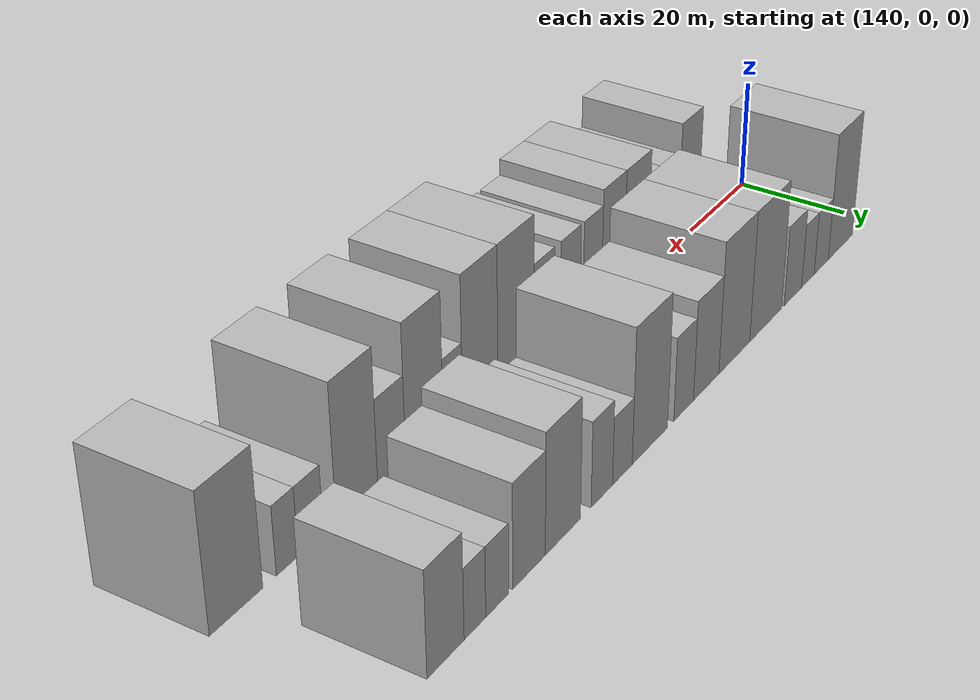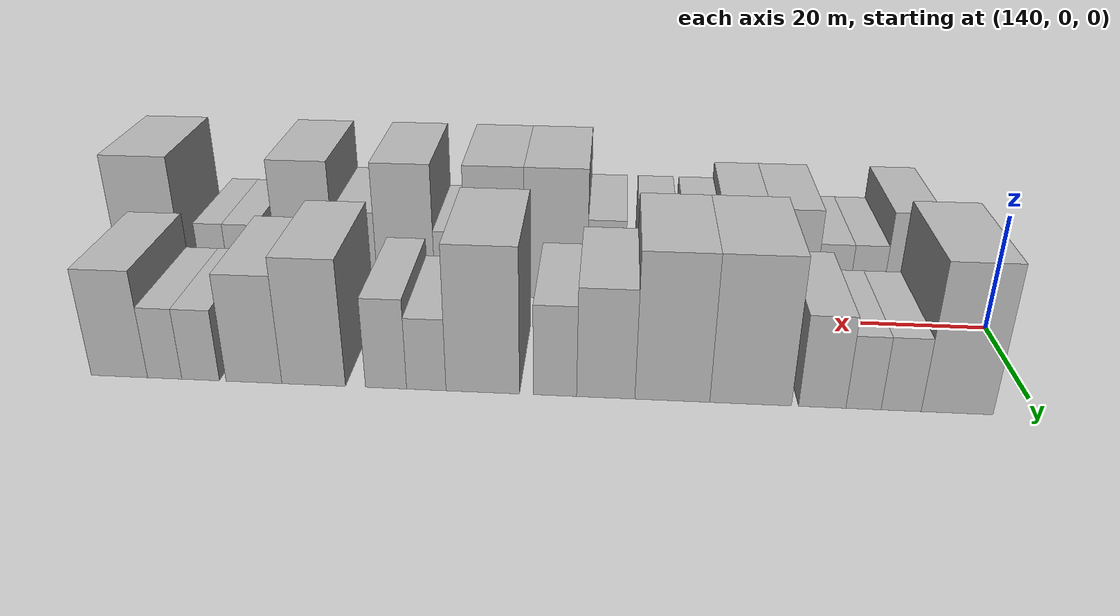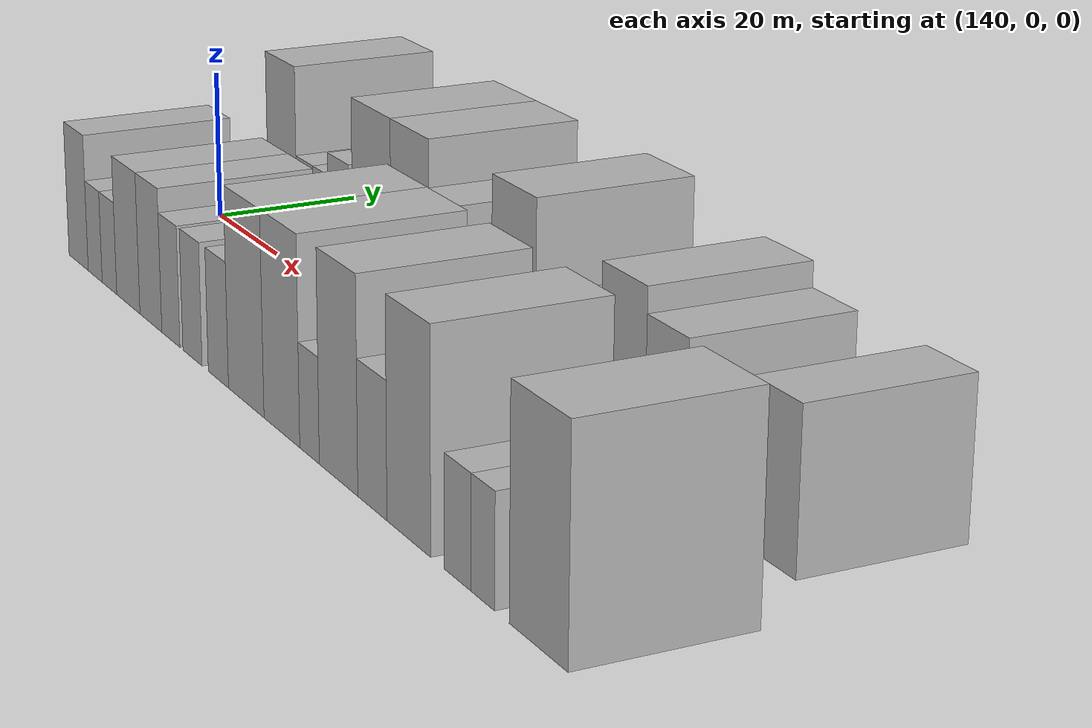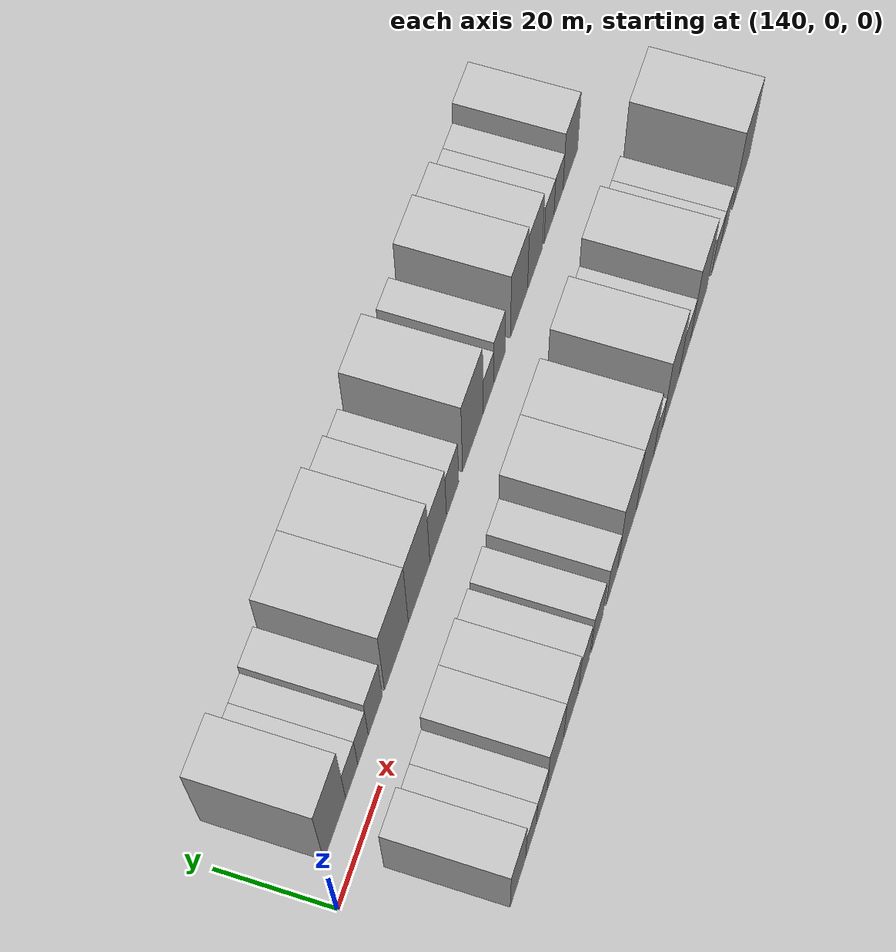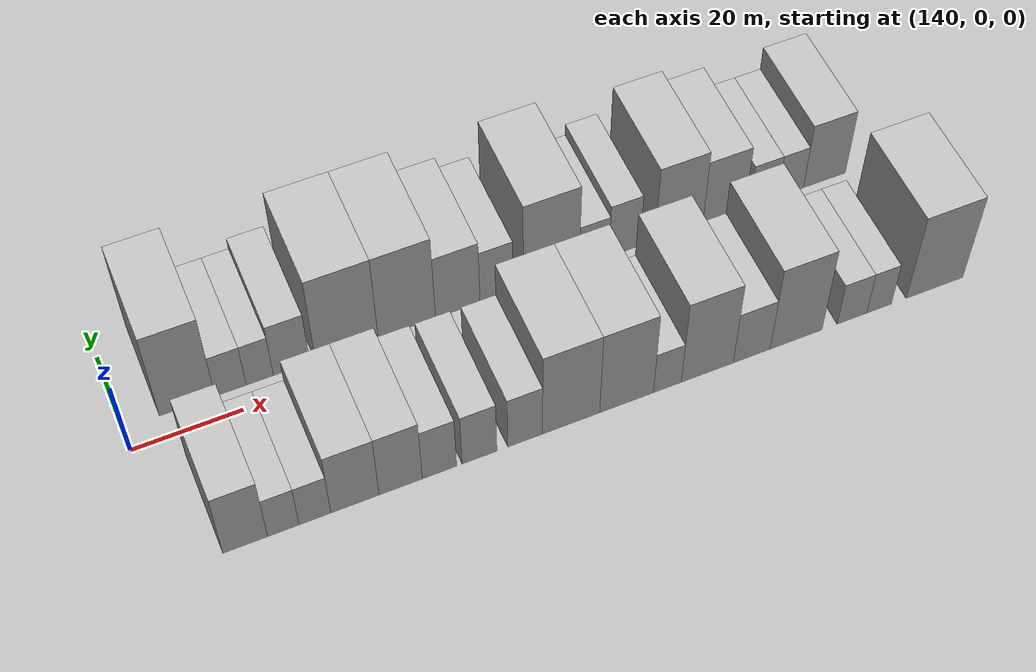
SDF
<sdf version="1.6">
 <world name="default">
  <model name="building_17">
   <static>1</static>
   <pose>151.4321 14.5000 0 0.000000 0.000000 1.570796</pose>
   <link name="link">
    <pose>0 0 12.00 0 0 0</pose>
    <collision name="collision"><geometry><box><size>20.0000 9.9852 24.0000</size></box></geometry></collision>
    <visual name="visual">
     <cast_shadows>0</cast_shadows>
     <geometry><box><size>20.0000 9.9852 24.0000</size></box></geometry>
     <material>
      <script>
       <uri>model://HANNAS_wall/materials/scripts</uri>
       <uri>model://HANNAS_wall/materials/textures</uri>
       <name>vrc/HANNAS_wall</name>
      </script>
     </material>
    </visual>
   </link>
  </model>
  <model name="building_18">
   <static>1</static>
   <pose>159.2347 14.5000 0 0.000000 0.000000 1.570796</pose>
   <link name="link">
    <pose>0 0 6.00 0 0 0</pose>
    <collision name="collision"><geometry><box><size>20.0000 5.6200 12.0000</size></box></geometry></collision>
    <visual name="visual">
     <cast_shadows>0</cast_shadows>
     <geometry><box><size>20.0000 5.6200 12.0000</size></box></geometry>
     <material>
      <script>
       <uri>model://HANNAS_wall/materials/scripts</uri>
       <uri>model://HANNAS_wall/materials/textures</uri>
       <name>vrc/HANNAS_wall</name>
      </script>
     </material>
    </visual>
   </link>
  </model>
  <model name="building_19">
   <static>1</static>
   <pose>164.5146 14.5000 0 0.000000 0.000000 1.570796</pose>
   <link name="link">
    <pose>0 0 6.00 0 0 0</pose>
    <collision name="collision"><geometry><box><size>20.0000 4.9398 12.0000</size></box></geometry></collision>
    <visual name="visual">
     <cast_shadows>0</cast_shadows>
     <geometry><box><size>20.0000 4.9398 12.0000</size></box></geometry>
     <material>
      <script>
       <uri>model://HANNAS_wall/materials/scripts</uri>
       <uri>model://HANNAS_wall/materials/textures</uri>
       <name>vrc/HANNAS_wall</name>
      </script>
     </material>
    </visual>
   </link>
  </model>
  <model name="building_20">
   <static>1</static>
   <pose>170.3260 14.5000 0 0.000000 0.000000 1.570796</pose>
   <link name="link">
    <pose>0 0 7.50 0 0 0</pose>
    <collision name="collision"><geometry><box><size>20.0000 6.6828 15.0000</size></box></geometry></collision>
    <visual name="visual">
     <cast_shadows>0</cast_shadows>
     <geometry><box><size>20.0000 6.6828 15.0000</size></box></geometry>
     <material>
      <script>
       <uri>model://HANNAS_wall/materials/scripts</uri>
       <uri>model://HANNAS_wall/materials/textures</uri>
       <name>vrc/HANNAS_wall</name>
      </script>
     </material>
    </visual>
   </link>
  </model>
  <model name="building_21">
   <static>1</static>
   <pose>180.5012 14.5000 0 0.000000 0.000000 1.570796</pose>
   <link name="link">
    <pose>0 0 12.00 0 0 0</pose>
    <collision name="collision"><geometry><box><size>20.0000 11.6677 24.0000</size></box></geometry></collision>
    <visual name="visual">
     <cast_shadows>0</cast_shadows>
     <geometry><box><size>20.0000 11.6677 24.0000</size></box></geometry>
     <material>
      <script>
       <uri>model://HANNAS_wall/materials/scripts</uri>
       <uri>model://HANNAS_wall/materials/textures</uri>
       <name>vrc/HANNAS_wall</name>
      </script>
     </material>
    </visual>
   </link>
  </model>
  <model name="building_22">
   <static>1</static>
   <pose>191.7352 14.5000 0 0.000000 0.000000 1.570796</pose>
   <link name="link">
    <pose>0 0 12.00 0 0 0</pose>
    <collision name="collision"><geometry><box><size>20.0000 10.8002 24.0000</size></box></geometry></collision>
    <visual name="visual">
     <cast_shadows>0</cast_shadows>
     <geometry><box><size>20.0000 10.8002 24.0000</size></box></geometry>
     <material>
      <script>
       <uri>model://HANNAS_wall/materials/scripts</uri>
       <uri>model://HANNAS_wall/materials/textures</uri>
       <name>vrc/HANNAS_wall</name>
      </script>
     </material>
    </visual>
   </link>
  </model>
  <model name="building_23">
   <static>1</static>
   <pose>201.3734 14.5000 0 0.000000 0.000000 1.570796</pose>
   <link name="link">
    <pose>0 0 9.00 0 0 0</pose>
    <collision name="collision"><geometry><box><size>20.0000 8.4760 18.0000</size></box></geometry></collision>
    <visual name="visual">
     <cast_shadows>0</cast_shadows>
     <geometry><box><size>20.0000 8.4760 18.0000</size></box></geometry>
     <material>
      <script>
       <uri>model://HANNAS_wall/materials/scripts</uri>
       <uri>model://HANNAS_wall/materials/textures</uri>
       <name>vrc/HANNAS_wall</name>
      </script>
     </material>
    </visual>
   </link>
  </model>
  <model name="building_24">
   <static>1</static>
   <pose>208.7909 14.5000 0 0.000000 0.000000 1.570796</pose>
   <link name="link">
    <pose>0 0 7.50 0 0 0</pose>
    <collision name="collision"><geometry><box><size>20.0000 6.3590 15.0000</size></box></geometry></collision>
    <visual name="visual">
     <cast_shadows>0</cast_shadows>
     <geometry><box><size>20.0000 6.3590 15.0000</size></box></geometry>
     <material>
      <script>
       <uri>model://HANNAS_wall/materials/scripts</uri>
       <uri>model://HANNAS_wall/materials/textures</uri>
       <name>vrc/HANNAS_wall</name>
      </script>
     </material>
    </visual>
   </link>
  </model>
  <model name="building_25">
   <static>1</static>
   <pose>219.3993 14.5000 0 0.000000 0.000000 1.570796</pose>
   <link name="link">
    <pose>0 0 12.00 0 0 0</pose>
    <collision name="collision"><geometry><box><size>20.0000 10.8577 24.0000</size></box></geometry></collision>
    <visual name="visual">
     <cast_shadows>0</cast_shadows>
     <geometry><box><size>20.0000 10.8577 24.0000</size></box></geometry>
     <material>
      <script>
       <uri>model://HANNAS_wall/materials/scripts</uri>
       <uri>model://HANNAS_wall/materials/textures</uri>
       <name>vrc/HANNAS_wall</name>
      </script>
     </material>
    </visual>
   </link>
  </model>
  <model name="building_26">
   <static>1</static>
   <pose>227.7608 14.5000 0 0.000000 0.000000 1.570796</pose>
   <link name="link">
    <pose>0 0 6.00 0 0 0</pose>
    <collision name="collision"><geometry><box><size>20.0000 5.8654 12.0000</size></box></geometry></collision>
    <visual name="visual">
     <cast_shadows>0</cast_shadows>
     <geometry><box><size>20.0000 5.8654 12.0000</size></box></geometry>
     <material>
      <script>
       <uri>model://HANNAS_wall/materials/scripts</uri>
       <uri>model://HANNAS_wall/materials/textures</uri>
       <name>vrc/HANNAS_wall</name>
      </script>
     </material>
    </visual>
   </link>
  </model>
  <model name="building_27">
   <static>1</static>
   <pose>233.7735 14.5000 0 0.000000 0.000000 1.570796</pose>
   <link name="link">
    <pose>0 0 7.50 0 0 0</pose>
    <collision name="collision"><geometry><box><size>20.0000 6.1600 15.0000</size></box></geometry></collision>
    <visual name="visual">
     <cast_shadows>0</cast_shadows>
     <geometry><box><size>20.0000 6.1600 15.0000</size></box></geometry>
     <material>
      <script>
       <uri>model://HANNAS_wall/materials/scripts</uri>
       <uri>model://HANNAS_wall/materials/textures</uri>
       <name>vrc/HANNAS_wall</name>
      </script>
     </material>
    </visual>
   </link>
  </model>
  <model name="building_28">
   <static>1</static>
   <pose>244.6639 14.5000 0 0.000000 0.000000 1.570796</pose>
   <link name="link">
    <pose>0 0 10.50 0 0 0</pose>
    <collision name="collision"><geometry><box><size>20.0000 9.6207 21.0000</size></box></geometry></collision>
    <visual name="visual">
     <cast_shadows>0</cast_shadows>
     <geometry><box><size>20.0000 9.6207 21.0000</size></box></geometry>
     <material>
      <script>
       <uri>model://HANNAS_wall/materials/scripts</uri>
       <uri>model://HANNAS_wall/materials/textures</uri>
       <name>vrc/HANNAS_wall</name>
      </script>
     </material>
    </visual>
   </link>
  </model>
  <model name="building_29">
   <static>1</static>
   <pose>253.7332 14.5000 0 0.000000 0.000000 1.570796</pose>
   <link name="link">
    <pose>0 0 9.00 0 0 0</pose>
    <collision name="collision"><geometry><box><size>20.0000 8.5179 18.0000</size></box></geometry></collision>
    <visual name="visual">
     <cast_shadows>0</cast_shadows>
     <geometry><box><size>20.0000 8.5179 18.0000</size></box></geometry>
     <material>
      <script>
       <uri>model://HANNAS_wall/materials/scripts</uri>
       <uri>model://HANNAS_wall/materials/textures</uri>
       <name>vrc/HANNAS_wall</name>
      </script>
     </material>
    </visual>
   </link>
  </model>
  <model name="building_30">
   <static>1</static>
   <pose>261.8812 14.5000 0 0.000000 0.000000 1.570796</pose>
   <link name="link">
    <pose>0 0 6.00 0 0 0</pose>
    <collision name="collision"><geometry><box><size>20.0000 5.7782 12.0000</size></box></geometry></collision>
    <visual name="visual">
     <cast_shadows>0</cast_shadows>
     <geometry><box><size>20.0000 5.7782 12.0000</size></box></geometry>
     <material>
      <script>
       <uri>model://HANNAS_wall/materials/scripts</uri>
       <uri>model://HANNAS_wall/materials/textures</uri>
       <name>vrc/HANNAS_wall</name>
      </script>
     </material>
    </visual>
   </link>
  </model>
  <model name="building_31">
   <static>1</static>
   <pose>267.4118 14.5000 0 0.000000 0.000000 1.570796</pose>
   <link name="link">
    <pose>0 0 6.00 0 0 0</pose>
    <collision name="collision"><geometry><box><size>20.0000 5.2829 12.0000</size></box></geometry></collision>
    <visual name="visual">
     <cast_shadows>0</cast_shadows>
     <geometry><box><size>20.0000 5.2829 12.0000</size></box></geometry>
     <material>
      <script>
       <uri>model://HANNAS_wall/materials/scripts</uri>
       <uri>model://HANNAS_wall/materials/textures</uri>
       <name>vrc/HANNAS_wall</name>
      </script>
     </material>
    </visual>
   </link>
  </model>
  <model name="building_32">
   <static>1</static>
   <pose>274.4233 14.5000 0 0.000000 0.000000 1.570796</pose>
   <link name="link">
    <pose>0 0 9.00 0 0 0</pose>
    <collision name="collision"><geometry><box><size>20.0000 8.7401 18.0000</size></box></geometry></collision>
    <visual name="visual">
     <cast_shadows>0</cast_shadows>
     <geometry><box><size>20.0000 8.7401 18.0000</size></box></geometry>
     <material>
      <script>
       <uri>model://HANNAS_wall/materials/scripts</uri>
       <uri>model://HANNAS_wall/materials/textures</uri>
       <name>vrc/HANNAS_wall</name>
      </script>
     </material>
    </visual>
   </link>
  </model>
  <model name="building_48">
   <static>1</static>
   <pose>152.1178 -14.5000 0 0.000000 0.000000 1.570796</pose>
   <link name="link">
    <pose>0 0 9.00 0 0 0</pose>
    <collision name="collision"><geometry><box><size>20.0000 7.7152 18.0000</size></box></geometry></collision>
    <visual name="visual">
     <cast_shadows>0</cast_shadows>
     <geometry><box><size>20.0000 7.7152 18.0000</size></box></geometry>
     <material>
      <script>
       <uri>model://HANNAS_wall/materials/scripts</uri>
       <uri>model://HANNAS_wall/materials/textures</uri>
       <name>vrc/HANNAS_wall</name>
      </script>
     </material>
    </visual>
   </link>
  </model>
  <model name="building_49">
   <static>1</static>
   <pose>158.7117 -14.5000 0 0.000000 0.000000 1.570796</pose>
   <link name="link">
    <pose>0 0 6.00 0 0 0</pose>
    <collision name="collision"><geometry><box><size>20.0000 5.4725 12.0000</size></box></geometry></collision>
    <visual name="visual">
     <cast_shadows>0</cast_shadows>
     <geometry><box><size>20.0000 5.4725 12.0000</size></box></geometry>
     <material>
      <script>
       <uri>model://HANNAS_wall/materials/scripts</uri>
       <uri>model://HANNAS_wall/materials/textures</uri>
       <name>vrc/HANNAS_wall</name>
      </script>
     </material>
    </visual>
   </link>
  </model>
  <model name="building_50">
   <static>1</static>
   <pose>164.2217 -14.5000 0 0.000000 0.000000 1.570796</pose>
   <link name="link">
    <pose>0 0 6.00 0 0 0</pose>
    <collision name="collision"><geometry><box><size>20.0000 5.5475 12.0000</size></box></geometry></collision>
    <visual name="visual">
     <cast_shadows>0</cast_shadows>
     <geometry><box><size>20.0000 5.5475 12.0000</size></box></geometry>
     <material>
      <script>
       <uri>model://HANNAS_wall/materials/scripts</uri>
       <uri>model://HANNAS_wall/materials/textures</uri>
       <name>vrc/HANNAS_wall</name>
      </script>
     </material>
    </visual>
   </link>
  </model>
  <model name="building_51">
   <static>1</static>
   <pose>171.2679 -14.5000 0 0.000000 0.000000 1.570796</pose>
   <link name="link">
    <pose>0 0 9.00 0 0 0</pose>
    <collision name="collision"><geometry><box><size>20.0000 8.5451 18.0000</size></box></geometry></collision>
    <visual name="visual">
     <cast_shadows>0</cast_shadows>
     <geometry><box><size>20.0000 8.5451 18.0000</size></box></geometry>
     <material>
      <script>
       <uri>model://HANNAS_wall/materials/scripts</uri>
       <uri>model://HANNAS_wall/materials/textures</uri>
       <name>vrc/HANNAS_wall</name>
      </script>
     </material>
    </visual>
   </link>
  </model>
  <model name="building_52">
   <static>1</static>
   <pose>179.4101 -14.5000 0 0.000000 0.000000 1.570796</pose>
   <link name="link">
    <pose>0 0 9.00 0 0 0</pose>
    <collision name="collision"><geometry><box><size>20.0000 7.7392 18.0000</size></box></geometry></collision>
    <visual name="visual">
     <cast_shadows>0</cast_shadows>
     <geometry><box><size>20.0000 7.7392 18.0000</size></box></geometry>
     <material>
      <script>
       <uri>model://HANNAS_wall/materials/scripts</uri>
       <uri>model://HANNAS_wall/materials/textures</uri>
       <name>vrc/HANNAS_wall</name>
      </script>
     </material>
    </visual>
   </link>
  </model>
  <model name="building_53">
   <static>1</static>
   <pose>186.3647 -14.5000 0 0.000000 0.000000 1.570796</pose>
   <link name="link">
    <pose>0 0 7.50 0 0 0</pose>
    <collision name="collision"><geometry><box><size>20.0000 6.1700 15.0000</size></box></geometry></collision>
    <visual name="visual">
     <cast_shadows>0</cast_shadows>
     <geometry><box><size>20.0000 6.1700 15.0000</size></box></geometry>
     <material>
      <script>
       <uri>model://HANNAS_wall/materials/scripts</uri>
       <uri>model://HANNAS_wall/materials/textures</uri>
       <name>vrc/HANNAS_wall</name>
      </script>
     </material>
    </visual>
   </link>
  </model>
  <model name="building_54">
   <static>1</static>
   <pose>193.6052 -14.5000 0 0.000000 0.000000 1.570796</pose>
   <link name="link">
    <pose>0 0 7.50 0 0 0</pose>
    <collision name="collision"><geometry><box><size>20.0000 6.3111 15.0000</size></box></geometry></collision>
    <visual name="visual">
     <cast_shadows>0</cast_shadows>
     <geometry><box><size>20.0000 6.3111 15.0000</size></box></geometry>
     <material>
      <script>
       <uri>model://HANNAS_wall/materials/scripts</uri>
       <uri>model://HANNAS_wall/materials/textures</uri>
       <name>vrc/HANNAS_wall</name>
      </script>
     </material>
    </visual>
   </link>
  </model>
  <model name="building_55">
   <static>1</static>
   <pose>201.9342 -14.5000 0 0.000000 0.000000 1.570796</pose>
   <link name="link">
    <pose>0 0 7.50 0 0 0</pose>
    <collision name="collision"><geometry><box><size>20.0000 6.3468 15.0000</size></box></geometry></collision>
    <visual name="visual">
     <cast_shadows>0</cast_shadows>
     <geometry><box><size>20.0000 6.3468 15.0000</size></box></geometry>
     <material>
      <script>
       <uri>model://HANNAS_wall/materials/scripts</uri>
       <uri>model://HANNAS_wall/materials/textures</uri>
       <name>vrc/HANNAS_wall</name>
      </script>
     </material>
    </visual>
   </link>
  </model>
  <model name="building_56">
   <static>1</static>
   <pose>210.4470 -14.5000 0 0.000000 0.000000 1.570796</pose>
   <link name="link">
    <pose>0 0 12.00 0 0 0</pose>
    <collision name="collision"><geometry><box><size>20.0000 10.6788 24.0000</size></box></geometry></collision>
    <visual name="visual">
     <cast_shadows>0</cast_shadows>
     <geometry><box><size>20.0000 10.6788 24.0000</size></box></geometry>
     <material>
      <script>
       <uri>model://HANNAS_wall/materials/scripts</uri>
       <uri>model://HANNAS_wall/materials/textures</uri>
       <name>vrc/HANNAS_wall</name>
      </script>
     </material>
    </visual>
   </link>
  </model>
  <model name="building_57">
   <static>1</static>
   <pose>220.8538 -14.5000 0 0.000000 0.000000 1.570796</pose>
   <link name="link">
    <pose>0 0 12.00 0 0 0</pose>
    <collision name="collision"><geometry><box><size>20.0000 10.1348 24.0000</size></box></geometry></collision>
    <visual name="visual">
     <cast_shadows>0</cast_shadows>
     <geometry><box><size>20.0000 10.1348 24.0000</size></box></geometry>
     <material>
      <script>
       <uri>model://HANNAS_wall/materials/scripts</uri>
       <uri>model://HANNAS_wall/materials/textures</uri>
       <name>vrc/HANNAS_wall</name>
      </script>
     </material>
    </visual>
   </link>
  </model>
  <model name="building_58">
   <static>1</static>
   <pose>228.5713 -14.5000 0 0.000000 0.000000 1.570796</pose>
   <link name="link">
    <pose>0 0 6.00 0 0 0</pose>
    <collision name="collision"><geometry><box><size>20.0000 5.3003 12.0000</size></box></geometry></collision>
    <visual name="visual">
     <cast_shadows>0</cast_shadows>
     <geometry><box><size>20.0000 5.3003 12.0000</size></box></geometry>
     <material>
      <script>
       <uri>model://HANNAS_wall/materials/scripts</uri>
       <uri>model://HANNAS_wall/materials/textures</uri>
       <name>vrc/HANNAS_wall</name>
      </script>
     </material>
    </visual>
   </link>
  </model>
  <model name="building_59">
   <static>1</static>
   <pose>236.2193 -14.5000 0 0.000000 0.000000 1.570796</pose>
   <link name="link">
    <pose>0 0 12.00 0 0 0</pose>
    <collision name="collision"><geometry><box><size>20.0000 9.9958 24.0000</size></box></geometry></collision>
    <visual name="visual">
     <cast_shadows>0</cast_shadows>
     <geometry><box><size>20.0000 9.9958 24.0000</size></box></geometry>
     <material>
      <script>
       <uri>model://HANNAS_wall/materials/scripts</uri>
       <uri>model://HANNAS_wall/materials/textures</uri>
       <name>vrc/HANNAS_wall</name>
      </script>
     </material>
    </visual>
   </link>
  </model>
  <model name="building_60">
   <static>1</static>
   <pose>244.8066 -14.5000 0 0.000000 0.000000 1.570796</pose>
   <link name="link">
    <pose>0 0 7.50 0 0 0</pose>
    <collision name="collision"><geometry><box><size>20.0000 7.1786 15.0000</size></box></geometry></collision>
    <visual name="visual">
     <cast_shadows>0</cast_shadows>
     <geometry><box><size>20.0000 7.1786 15.0000</size></box></geometry>
     <material>
      <script>
       <uri>model://HANNAS_wall/materials/scripts</uri>
       <uri>model://HANNAS_wall/materials/textures</uri>
       <name>vrc/HANNAS_wall</name>
      </script>
     </material>
    </visual>
   </link>
  </model>
  <model name="building_61">
   <static>1</static>
   <pose>253.5013 -14.5000 0 0.000000 0.000000 1.570796</pose>
   <link name="link">
    <pose>0 0 12.00 0 0 0</pose>
    <collision name="collision"><geometry><box><size>20.0000 10.2108 24.0000</size></box></geometry></collision>
    <visual name="visual">
     <cast_shadows>0</cast_shadows>
     <geometry><box><size>20.0000 10.2108 24.0000</size></box></geometry>
     <material>
      <script>
       <uri>model://HANNAS_wall/materials/scripts</uri>
       <uri>model://HANNAS_wall/materials/textures</uri>
       <name>vrc/HANNAS_wall</name>
      </script>
     </material>
    </visual>
   </link>
  </model>
  <model name="building_62">
   <static>1</static>
   <pose>264.5497 -14.5000 0 0.000000 0.000000 1.570796</pose>
   <link name="link">
    <pose>0 0 6.00 0 0 0</pose>
    <collision name="collision"><geometry><box><size>20.0000 5.8860 12.0000</size></box></geometry></collision>
    <visual name="visual">
     <cast_shadows>0</cast_shadows>
     <geometry><box><size>20.0000 5.8860 12.0000</size></box></geometry>
     <material>
      <script>
       <uri>model://HANNAS_wall/materials/scripts</uri>
       <uri>model://HANNAS_wall/materials/textures</uri>
       <name>vrc/HANNAS_wall</name>
      </script>
     </material>
    </visual>
   </link>
  </model>
  <model name="building_63">
   <static>1</static>
   <pose>269.9735 -14.5000 0 0.000000 0.000000 1.570796</pose>
   <link name="link">
    <pose>0 0 6.00 0 0 0</pose>
    <collision name="collision"><geometry><box><size>20.0000 4.9617 12.0000</size></box></geometry></collision>
    <visual name="visual">
     <cast_shadows>0</cast_shadows>
     <geometry><box><size>20.0000 4.9617 12.0000</size></box></geometry>
     <material>
      <script>
       <uri>model://HANNAS_wall/materials/scripts</uri>
       <uri>model://HANNAS_wall/materials/textures</uri>
       <name>vrc/HANNAS_wall</name>
      </script>
     </material>
    </visual>
   </link>
  </model>
  <model name="building_64">
   <static>1</static>
   <pose>281.2040 -14.5000 0 0.000000 0.000000 1.570796</pose>
   <link name="link">
    <pose>0 0 12.00 0 0 0</pose>
    <collision name="collision"><geometry><box><size>20.0000 11.4994 24.0000</size></box></geometry></collision>
    <visual name="visual">
     <cast_shadows>0</cast_shadows>
     <geometry><box><size>20.0000 11.4994 24.0000</size></box></geometry>
     <material>
      <script>
       <uri>model://HANNAS_wall/materials/scripts</uri>
       <uri>model://HANNAS_wall/materials/textures</uri>
       <name>vrc/HANNAS_wall</name>
      </script>
     </material>
    </visual>
   </link>
  </model>
 </world>
</sdf>
